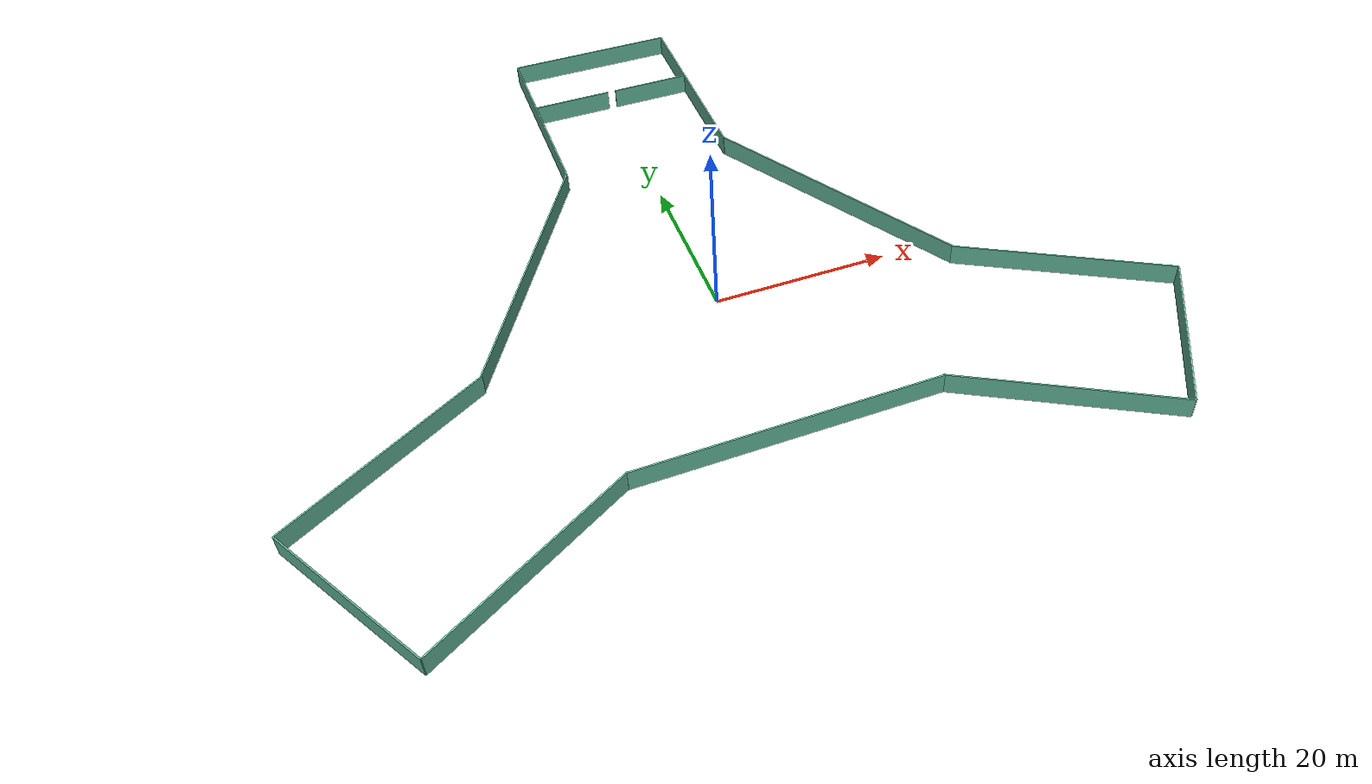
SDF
<?xml version='1.0'?>
<sdf version='1.6'>
  <model name='empty_room'>
    <pose frame=''>0 0 0 0 0 0</pose>
    <link name='Wall_0'>
      <collision name='Wall_0_Collision'>
        <geometry>
          <box>
            <size>20 0.15 2.5</size>
          </box>
        </geometry>
        <pose frame=''>0 0 1.25 0 0 0</pose>
      </collision>
      <visual name='Wall_0_Visual'>
        <pose frame=''>0 0 1.25 0 0 0</pose>
        <geometry>
          <box>
            <size>20 0.15 2.5</size>
          </box>
        </geometry>
        <material>
          <script>
            <uri>file://media/materials/scripts/gazebo.material</uri>
            <name>Gazebo/Grey</name>
          </script>
          <ambient>0.435294 0.796078 0.67451 1</ambient>
        </material>
        <meta>
          <layer>0</layer>
        </meta>
      </visual>
      <pose frame=''>0 50 0 0 0 0</pose>
    </link>

    <link name='Wall_1'>
      <collision name='Wall_1_Collision'>
        <geometry>
          <box>
            <size>20 0.15 2.5</size>
          </box>
        </geometry>
        <pose frame=''>0 0 1.25 0 0 0</pose>
      </collision>
      <visual name='Wall_1_Visual'>
        <pose frame=''>0 0 1.25 0 0 0</pose>
        <geometry>
          <box>
            <size>20 0.15 2.5</size>
          </box>
        </geometry>
        <material>
          <script>
            <uri>file://media/materials/scripts/gazebo.material</uri>
            <name>Gazebo/Grey</name>
          </script>
          <ambient>0.435294 0.796078 0.67451 1</ambient>
        </material>
        <meta>
          <layer>0</layer>
        </meta>
      </visual>
      <pose frame=''>-43.301272749 -25 0 0 0 2.094395</pose>
    </link>

    <link name='Wall_2'>
      <collision name='Wall_2_Collision'>
        <geometry>
          <box>
            <size>20 0.15 2.5</size>
          </box>
        </geometry>
        <pose frame=''>0 0 1.25 0 0 0</pose>
      </collision>
      <visual name='Wall_2_Visual'>
        <pose frame=''>0 0 1.25 0 0 0</pose>
        <geometry>
          <box>
            <size>20 0.15 2.5</size>
          </box>
        </geometry>
        <material>
          <script>
            <uri>file://media/materials/scripts/gazebo.material</uri>
            <name>Gazebo/Grey</name>
          </script>
          <ambient>0.435294 0.796078 0.67451 1</ambient>
        </material>
        <meta>
          <layer>0</layer>
        </meta>
      </visual>
      <pose frame=''>43.301272749 -25 0 0 0 -2.094395</pose>
    </link>

    <link name='Wall_3'>
      <collision name='Wall_3_Collision'>
        <geometry>
          <box>
            <size>0.15 25 2.5</size>
          </box>
        </geometry>
        <pose frame=''>-10 0 1.25 0 0 0</pose>
      </collision>
      <visual name='Wall_3_Visual'>
        <pose frame=''>-10 0 1.25 0 0 0</pose>
        <geometry>
          <box>
            <size>0.15 25 2.5</size>
          </box>
        </geometry>
        <material>
          <script>
            <uri>file://media/materials/scripts/gazebo.material</uri>
            <name>Gazebo/Grey</name>
          </script>
          <ambient>0.435294 0.796078 0.67451 1</ambient>
        </material>
        <meta>
          <layer>0</layer>
        </meta>
      </visual>
      <pose frame=''>0 37.5 0 0 0 0</pose>
    </link>

    <link name='Wall_4'>
      <collision name='Wall_4_Collision'>
        <geometry>
          <box>
            <size>0.15 25 2.5</size>
          </box>
        </geometry>
        <pose frame=''>10 0 1.25 0 0 0</pose>
      </collision>
      <visual name='Wall_4_Visual'>
        <pose frame=''>10 0 1.25 0 0 0</pose>
        <geometry>
          <box>
            <size>0.15 25 2.5</size>
          </box>
        </geometry>
        <material>
          <script>
            <uri>file://media/materials/scripts/gazebo.material</uri>
            <name>Gazebo/Grey</name>
          </script>
          <ambient>0.435294 0.796078 0.67451 1</ambient>
        </material>
        <meta>
          <layer>0</layer>
        </meta>
      </visual>
      <pose frame=''>0 37.5 0 0 0 0</pose>
    </link>

    <link name='Wall_5'>
      <collision name='Wall_5_Collision'>
        <geometry>
          <box>
            <size>0.15 25 2.5</size>
          </box>
        </geometry>
        <pose frame=''>-10 37.5 1.25 0 0 0</pose>
      </collision>
      <visual name='Wall_5_Visual'>
        <pose frame=''>-10 37.5 1.25 0 0 0</pose>
        <geometry>
          <box>
            <size>0.15 25 2.5</size>
          </box>
        </geometry>
        <material>
          <script>
            <uri>file://media/materials/scripts/gazebo.material</uri>
            <name>Gazebo/Grey</name>
          </script>
          <ambient>0.435294 0.796078 0.67451 1</ambient>
        </material>
        <meta>
          <layer>0</layer>
        </meta>
      </visual>
      <pose frame=''>0 0 0 0 0 2.094395</pose>
    </link>

    <link name='Wall_6'>
      <collision name='Wall_6_Collision'>
        <geometry>
          <box>
            <size>0.15 25 2.5</size>
          </box>
        </geometry>
        <pose frame=''>10 37.5 1.25 0 0 0</pose>
      </collision>
      <visual name='Wall_6_Visual'>
        <pose frame=''>10 37.5 1.25 0 0 0</pose>
        <geometry>
          <box>
            <size>0.15 25 2.5</size>
          </box>
        </geometry>
        <material>
          <script>
            <uri>file://media/materials/scripts/gazebo.material</uri>
            <name>Gazebo/Grey</name>
          </script>
          <ambient>0.435294 0.796078 0.67451 1</ambient>
        </material>
        <meta>
          <layer>0</layer>
        </meta>
      </visual>
      <pose frame=''>0 0 0 0 0 2.094395</pose>
    </link>

    <link name='Wall_7'>
      <collision name='Wall_7_Collision'>
        <geometry>
          <box>
            <size>0.15 25 2.5</size>
          </box>
        </geometry>
        <pose frame=''>-10 37.5 1.25 0 0 0</pose>
      </collision>
      <visual name='Wall_7_Visual'>
        <pose frame=''>-10 37.5 1.25 0 0 0</pose>
        <geometry>
          <box>
            <size>0.15 25 2.5</size>
          </box>
        </geometry>
        <material>
          <script>
            <uri>file://media/materials/scripts/gazebo.material</uri>
            <name>Gazebo/Grey</name>
          </script>
          <ambient>0.435294 0.796078 0.67451 1</ambient>
        </material>
        <meta>
          <layer>0</layer>
        </meta>
      </visual>
      <pose frame=''>0 0 0 0 0 -2.094395</pose>
    </link>

    <link name='Wall_8'>
      <collision name='Wall_8_Collision'>
        <geometry>
          <box>
            <size>0.15 25 2.5</size>
          </box>
        </geometry>
        <pose frame=''>10 37.5 1.25 0 0 0</pose>
      </collision>
      <visual name='Wall_8_Visual'>
        <pose frame=''>10 37.5 1.25 0 0 0</pose>
        <geometry>
          <box>
            <size>0.15 25 2.5</size>
          </box>
        </geometry>
        <material>
          <script>
            <uri>file://media/materials/scripts/gazebo.material</uri>
            <name>Gazebo/Grey</name>
          </script>
          <ambient>0.435294 0.796078 0.67451 1</ambient>
        </material>
        <meta>
          <layer>0</layer>
        </meta>
      </visual>
      <pose frame=''>0 0 0 0 0 -2.094395</pose>
    </link>

    <link name='Wall_9'>
      <collision name='Wall_9_Collision'>
        <geometry>
          <box>
            <size>33.5 0.15 2.5</size>
          </box>
        </geometry>
        <pose frame=''>0 -21.25 1.25 0 0 0</pose>
      </collision>
      <visual name='Wall_9_Visual'>
        <pose frame=''>0 -21.25 1.25 0 0 0</pose>
        <geometry>
          <box>
            <size>33.5 0.15 2.5</size>
          </box>
        </geometry>
        <material>
          <script>
            <uri>file://media/materials/scripts/gazebo.material</uri>
            <name>Gazebo/Grey</name>
          </script>
          <ambient>0.435294 0.796078 0.67451 1</ambient>
        </material>
        <meta>
          <layer>0</layer>
        </meta>
      </visual>
      <pose frame=''>0 0 0 0 0 4.18879</pose>
    </link>

    <link name='Wall_10'>
      <collision name='Wall_10_Collision'>
        <geometry>
          <box>
            <size>33.5 0.15 2.5</size>
          </box>
        </geometry>
        <pose frame=''>0 -21.25 1.25 0 0 0</pose>
      </collision>
      <visual name='Wall_10_Visual'>
        <pose frame=''>0 -21.25 1.25 0 0 0</pose>
        <geometry>
          <box>
            <size>33.5 0.15 2.5</size>
          </box>
        </geometry>
        <material>
          <script>
            <uri>file://media/materials/scripts/gazebo.material</uri>
            <name>Gazebo/Grey</name>
          </script>
          <ambient>0.435294 0.796078 0.67451 1</ambient>
        </material>
        <meta>
          <layer>0</layer>
        </meta>
      </visual>
      <pose frame=''>0 0 0 0 0 -4.18879</pose>
    </link>

   <link name='Wall_11'>
      <collision name='Wall_11_Collision'>
        <geometry>
          <box>
            <size>33.5 0.15 2.5</size>
          </box>
        </geometry>
        <pose frame=''>0 -21.25 1.25 0 0 0</pose>
      </collision>
      <visual name='Wall_11_Visual'>
        <pose frame=''>0 -21.25 1.25 0 0 0</pose>
        <geometry>
          <box>
            <size>33.5 0.15 2.5</size>
          </box>
        </geometry>
        <material>
          <script>
            <uri>file://media/materials/scripts/gazebo.material</uri>
            <name>Gazebo/Grey</name>
          </script>
          <ambient>0.435294 0.796078 0.67451 1</ambient>
        </material>
        <meta>
          <layer>0</layer>
        </meta>
      </visual>
      <pose frame=''>0 0 0 0 0 0</pose>
    </link>

     <link name='Wall_12'>
      <collision name='Wall_12_Collision'>
        <geometry>
          <box>
            <size>9.5 0.15 2.5</size>
          </box>
        </geometry>
        <pose frame=''>0 0 1.25 0 0 0</pose>
      </collision>
      <visual name='Wall_12_Visual'>
        <pose frame=''>0 0 1.25 0 0 0</pose>
        <geometry>
          <box>
            <size>9.5 0.15 2.5</size>
          </box>
        </geometry>
        <material>
          <script>
            <uri>file://media/materials/scripts/gazebo.material</uri>
            <name>Gazebo/Grey</name>
          </script>
          <ambient>0.435294 0.796078 0.67451 1</ambient>
        </material>
        <meta>
          <layer>0</layer>
        </meta>
      </visual>
      <pose frame=''>-5.25 40 0 0 0 0</pose>
    </link>

    <link name='Wall_13'>
      <collision name='Wall_13_Collision'>
        <geometry>
          <box>
            <size>9.5 0.15 2.5</size>
          </box>
        </geometry>
        <pose frame=''>0 0 1.25 0 0 0</pose>
      </collision>
      <visual name='Wall_13_Visual'>
        <pose frame=''>0 0 1.25 0 0 0</pose>
        <geometry>
          <box>
            <size>9.5 0.15 2.5</size>
          </box>
        </geometry>
        <material>
          <script>
            <uri>file://media/materials/scripts/gazebo.material</uri>
            <name>Gazebo/Grey</name>
          </script>
          <ambient>0.435294 0.796078 0.67451 1</ambient>
        </material>
        <meta>
          <layer>0</layer>
        </meta>
      </visual>
      <pose frame=''>5.25 40 0 0 0 0</pose>
    </link>

    <static>1</static>
  </model>
</sdf>
